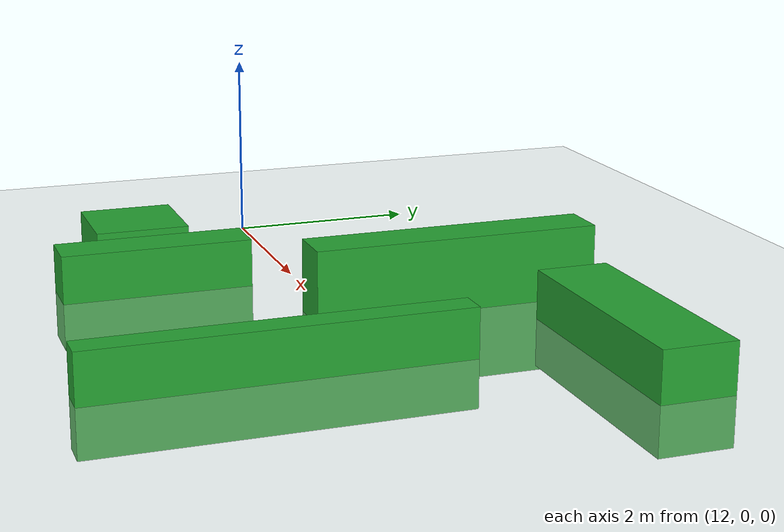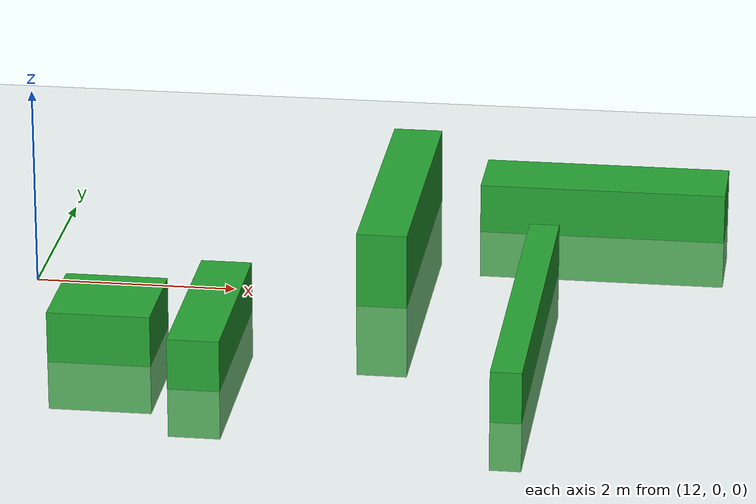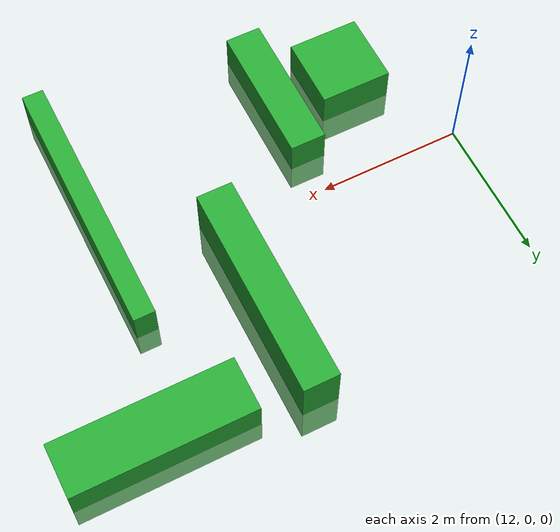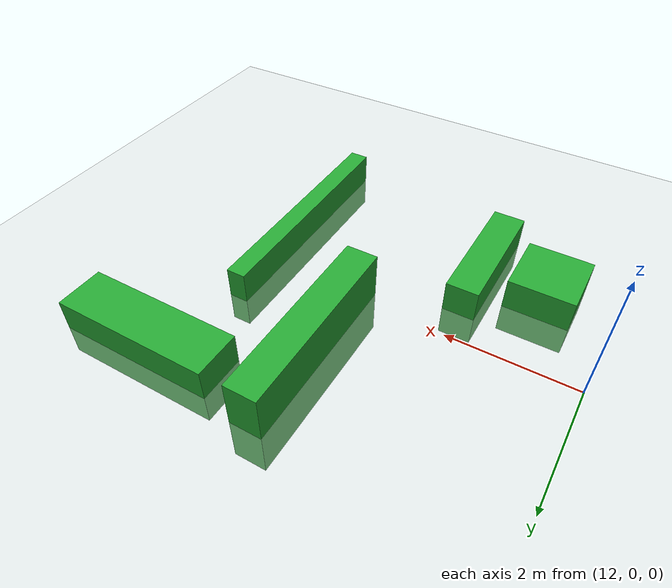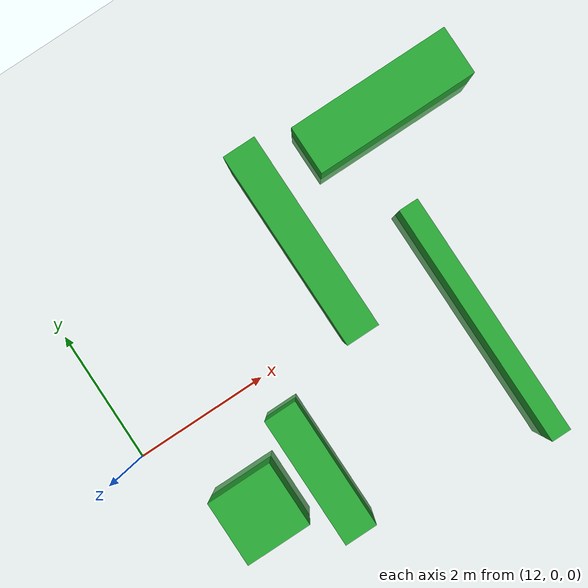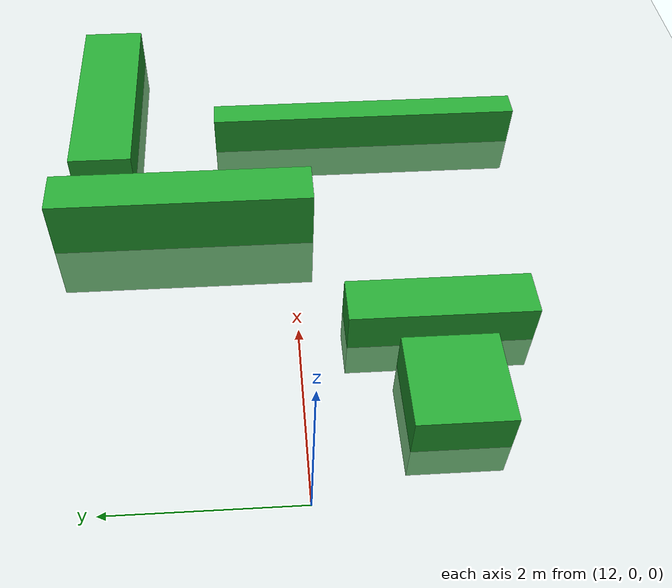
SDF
<sdf version="1.4">
 <world name="default">
  <include><uri>model://sun</uri></include>
  <include><uri>model://ground_plane</uri></include>
  <physics type="ode">
   <real_time_update_rate>1000.0</real_time_update_rate>
   <max_step_size>0.001</max_step_size>
   <real_time_factor>1</real_time_factor>
   <ode>
    <solver>
     <type>quick</type>
     <iters>150</iters>
     <precon_iters>0</precon_iters>
     <sor>1.400000</sor>
     <use_dynamic_moi_rescaling>1</use_dynamic_moi_rescaling>
    </solver>
    <constraints>
     <cfm>0.00001</cfm>
     <erp>0.2</erp>
     <contact_max_correcting_vel>2000.000000</contact_max_correcting_vel>
     <contact_surface_layer>0.01000</contact_surface_layer>
    </constraints>
   </ode>
  </physics>
  <model name="actor1_collision_model">
   <pose>0 0 -100 0 0 0</pose>
   <static>true</static>
   <link name="link">
    <collision name="link">
     <pose>0 -0.18 0.00 1.57 0 0</pose>
     <geometry><cylinder><radius>0.3</radius><length>1.8</length></cylinder></geometry>
    </collision>
   </link>
  </model>
  <model name="actor2_collision_model">
   <pose>0 0 -100 0 0 0</pose>
   <static>true</static>
   <link name="link">
    <collision name="link">
     <pose>0 -0.18 0.00 1.57 0 0</pose>
     <geometry><cylinder><radius>0.3</radius><length>1.8</length></cylinder></geometry>
    </collision>
   </link>
  </model>
  <model name="actor3_collision_model">
   <pose>8 2 -100 0 0 0</pose>
   <static>true</static>
   <link name="link">
    <collision name="link">
     <pose>0 -0.18 0.00 1.57 0 0</pose>
     <geometry><cylinder><radius>0.3</radius><length>1.8</length></cylinder></geometry>
    </collision>
   </link>
  </model>
  <model name="actor4_collision_model">
   <pose>0 0 -100 0 0 0</pose>
   <static>true</static>
   <link name="link">
    <collision name="link">
     <pose>0 -0.18 0.00 1.57 0 0</pose>
     <geometry><cylinder><radius>0.3</radius><length>1.8</length></cylinder></geometry>
    </collision>
   </link>
  </model>
  <model name="obstacle">
   <link name="obstacle">
    <collision name="obstacle_1">
     <pose>15.5 1.25 0 0 0 0</pose>
     <geometry><box><size>0.5 3.0 1.5</size></box></geometry>
    </collision>
    <visual name="obstacle_1">
     <pose>15.5 1.25 0 0 0 0</pose>
     <geometry><box><size>0.5 3.0 1.5</size></box></geometry>
     <material>
      <script><uri>file://media/materials/scripts/gazebo.material</uri><name>Gazebo/Green</name></script>
     </material>
    </visual>
    <collision name="obstacle_2">
     <pose>14.0 -1.5 0 0 0 0</pose>
     <geometry><box><size>0.5 2.0 1.0</size></box></geometry>
    </collision>
    <visual name="obstacle_2">
     <pose>14.0 -1.5 0 0 0 0</pose>
     <geometry><box><size>0.5 2.0 1.0</size></box></geometry>
     <material>
      <script><uri>file://media/materials/scripts/gazebo.material</uri><name>Gazebo/Green</name></script>
     </material>
    </visual>
    <collision name="obstacle_3">
     <pose>13.0 -1.5 0 0 0 0</pose>
     <geometry><box><size>1.0 1.0 1.0</size></box></geometry>
    </collision>
    <visual name="obstacle_3">
     <pose>13.0 -1.5 0 0 0 0</pose>
     <geometry><box><size>1.0 1.0 1.0</size></box></geometry>
     <material>
      <script><uri>file://media/materials/scripts/gazebo.material</uri><name>Gazebo/Green</name></script>
     </material>
    </visual>
    <collision name="obstacle_4">
     <pose>17.50 2.25 0 0 0 0</pose>
     <geometry><box><size>2.50 0.75 1.0</size></box></geometry>
    </collision>
    <visual name="obstacle_4">
     <pose>17.50 2.25 0 0 0 0</pose>
     <geometry><box><size>2.50 0.75 1.0</size></box></geometry>
     <material>
      <script><uri>file://media/materials/scripts/gazebo.material</uri><name>Gazebo/Green</name></script>
     </material>
    </visual>
    <collision name="obstacle_5">
     <pose>17.0 -1.0 0 0 0 0</pose>
     <geometry><box><size>0.3 3.75 1.0</size></box></geometry>
    </collision>
    <visual name="obstacle_5">
     <pose>17.0 -1.0 0 0 0 0</pose>
     <geometry><box><size>0.3 3.75 1.0</size></box></geometry>
     <material>
      <script><uri>file://media/materials/scripts/gazebo.material</uri><name>Gazebo/Green</name></script>
     </material>
    </visual>
   </link>
   <static>1</static>
  </model>
  <scene><ambient>0.4 0.4 0.4 1</ambient><background>0.7 0.7 0.7 1</background><shadows>false</shadows></scene>
 </world>
</sdf>
